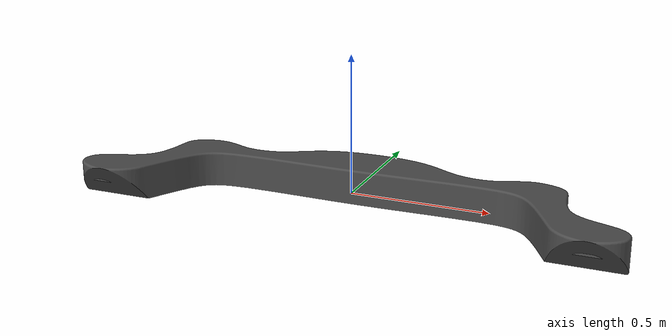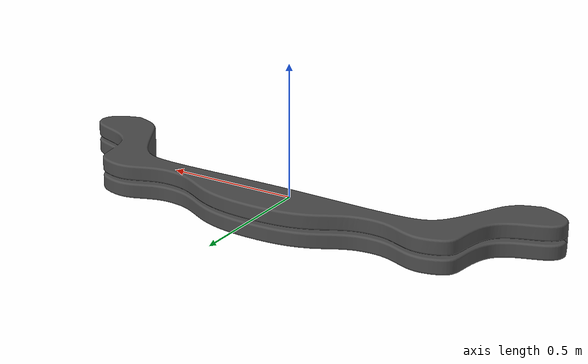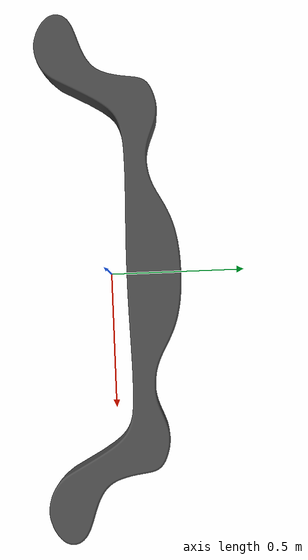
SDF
<?xml version="1.0" ?>
<sdf version="1.6">
  <model name="fixture">

    <pose>0 0 0 0 0 0</pose>

    <static>true</static>

    <link name="fixture">

      <inertial>
        <mass>36.13</mass>
        <inertia>
          <ixx>0.6089</ixx>
          <ixy>-0.0067776</ixy>
          <ixz>-0.0002244</ixz>
          <iyy>11.439</iyy>
          <iyz>0.012623</iyz>
          <izz>11.944</izz>
        </inertia>
      </inertial>

      <collision name="collision">
        <geometry>
          <mesh>
            <uri>model://fixture/fixture.STL</uri>
          </mesh>
        </geometry>
      </collision>

      <visual name="visual">
        <geometry>
          <mesh>
            <uri>model://fixture/fixture.STL</uri>
          </mesh>
        </geometry>

        <material>
          <!-- RGBA format: R G B A (each from 0.0 to 1.0) -->
          <ambient>0.3 0.3 0.3 1.0</ambient>
          <diffuse>0.3 0.3 0.3 1.0</diffuse>
          <specular>0.0 0.0 0.0 1.0</specular>
          <emissive>0.0 0.0 0.0 1.0</emissive>
        </material>

      </visual>

    </link>

  </model>
</sdf>
